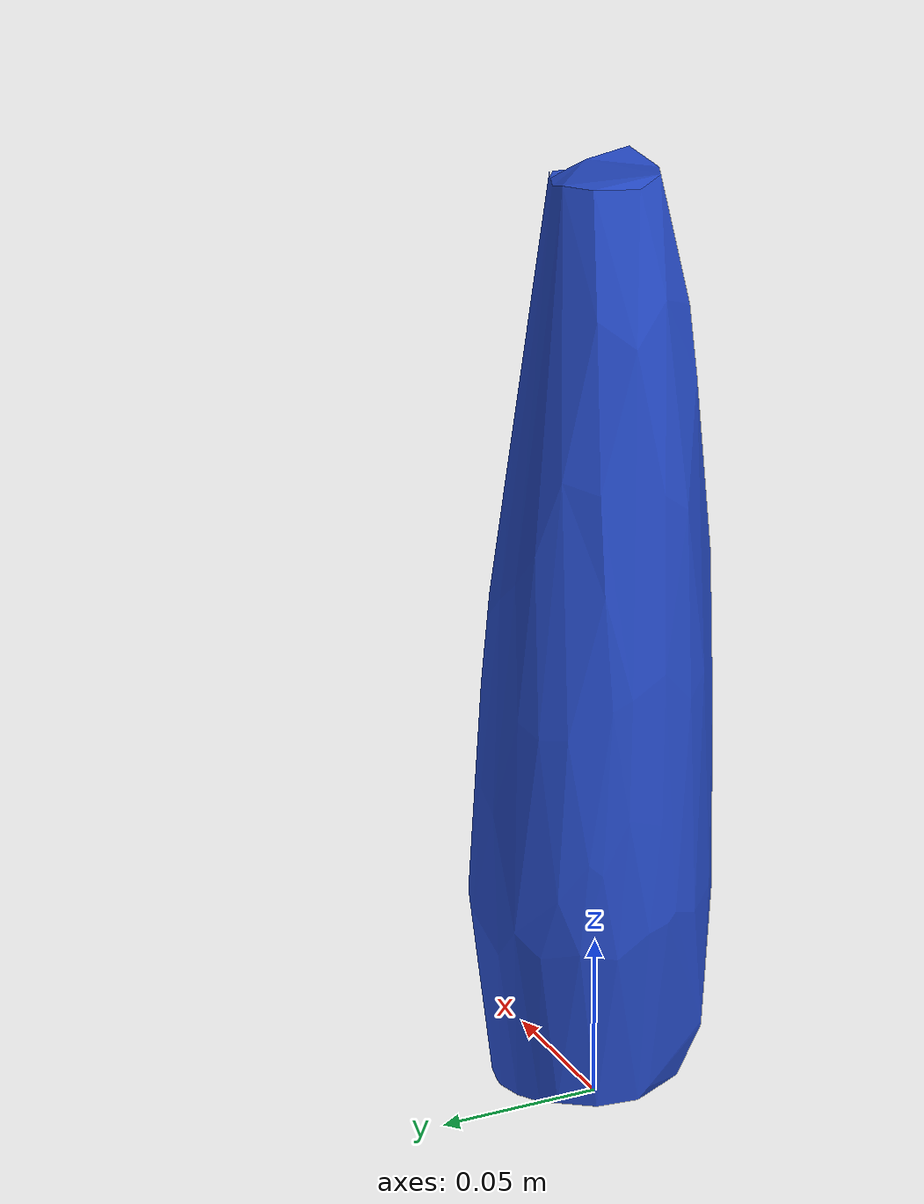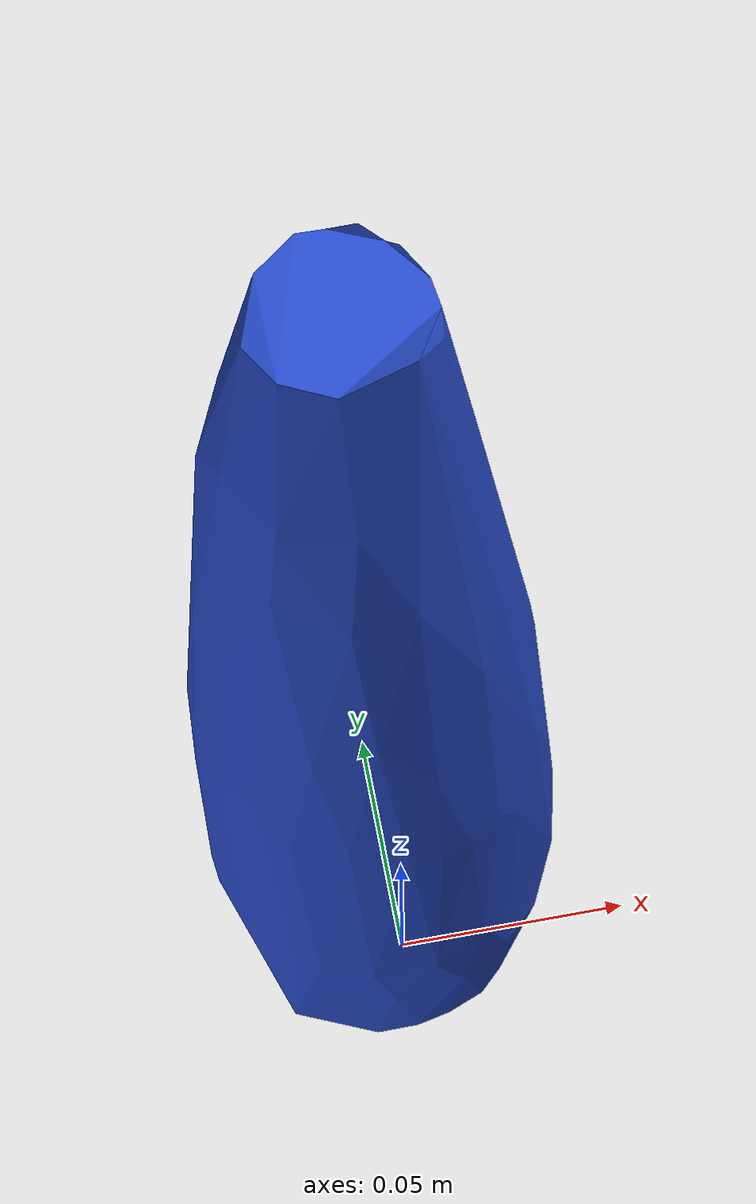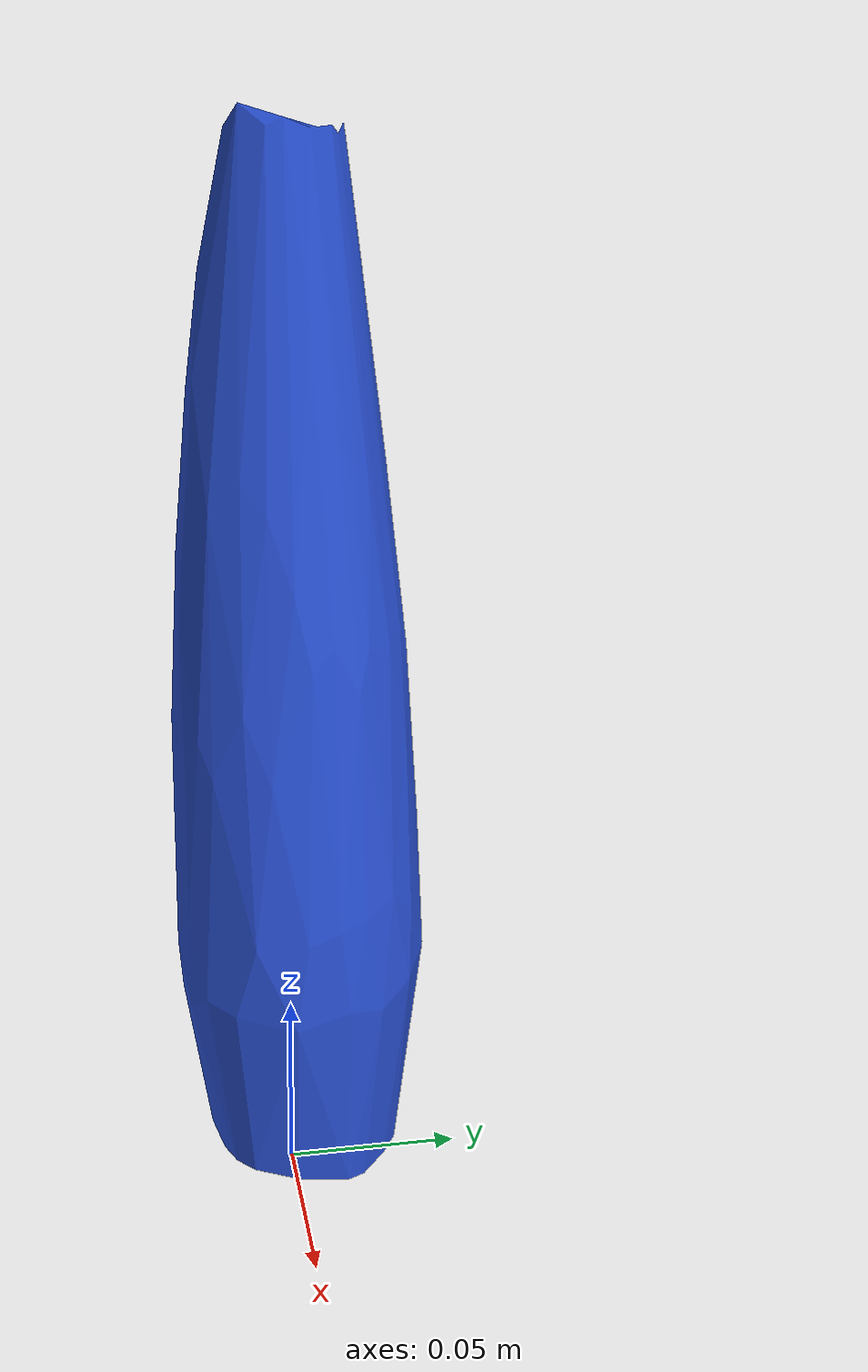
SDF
<?xml version='1.0'?>
<sdf version="1.4">
  <model name="ikea_table_leg_blue">
    <static>false</static>
    <link name="link">
      <inertial>
        <pose>-0.005322068066828465 0.0019737454887705287 0.12804792936129067 0.029520306060789 0.017375735636665116 -1.5389566208305796</pose>
        <mass>0.07966415267657621</mass>
        <inertia>
          <ixx>0.0004188726732292719</ixx>
          <ixy>1.6642041489513475e-20</ixy>
          <ixz>-4.7717193088595365e-20</ixz>
          <iyy>0.00041846751537767625</iyy>
          <iyz>-2.0048345583255892e-21</iyz>
          <izz>3.973287408097586e-05</izz>
        </inertia>
      </inertial>
      <collision name="collision">
        <geometry>
          <mesh>
            <!-- Use a downsampled mesh for collisions -->
            <uri>model:///ikea_table_leg_blue/ikea_table_leg_blue_250_collision.obj</uri>
	        </mesh>
        </geometry>
        <surface>
      </surface>
      </collision>
      <visual name="visual">
        <geometry>
          <mesh>
            <uri>model:///ikea_table_leg_blue/optimized_tsdf_texture_mapped_mesh.obj</uri>
	        </mesh>
        </geometry>
        <material>
          <script>
            <uri>model:///ikea_table_leg_blue/ikea_table_leg_blue.material</uri>
            <name>ikea_table_leg_blue</name>
          </script>
        </material>
      </visual>
    </link>
  </model>
</sdf>
